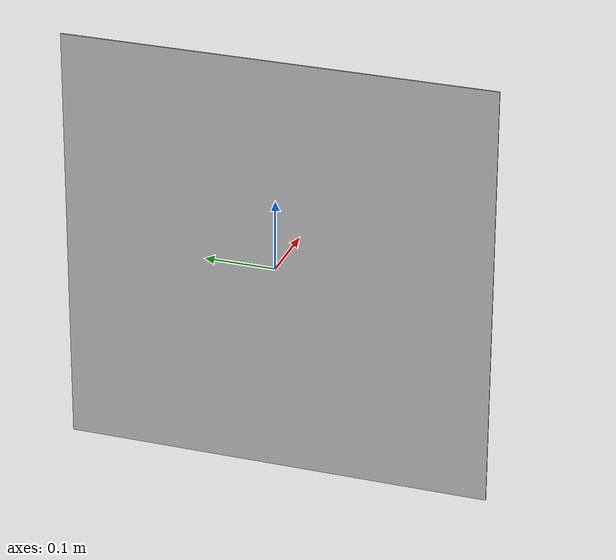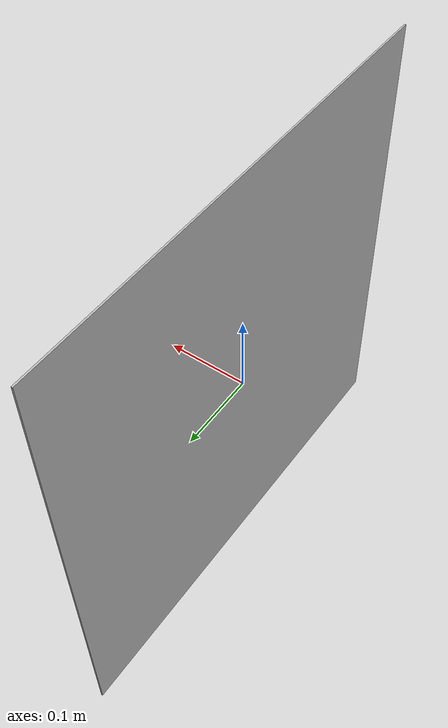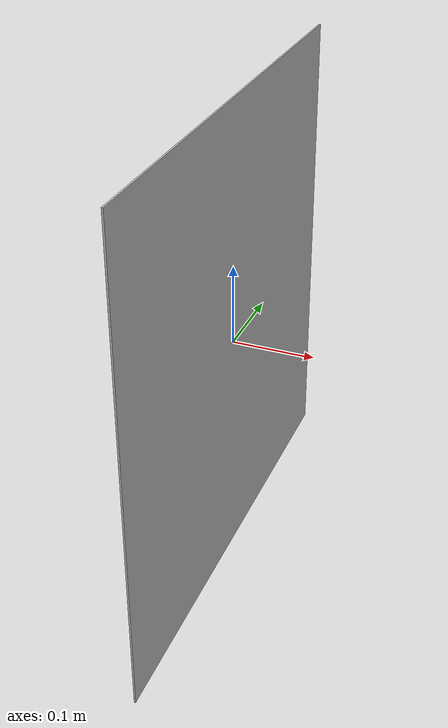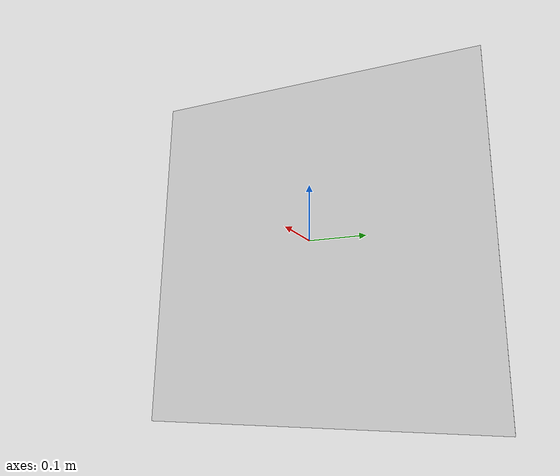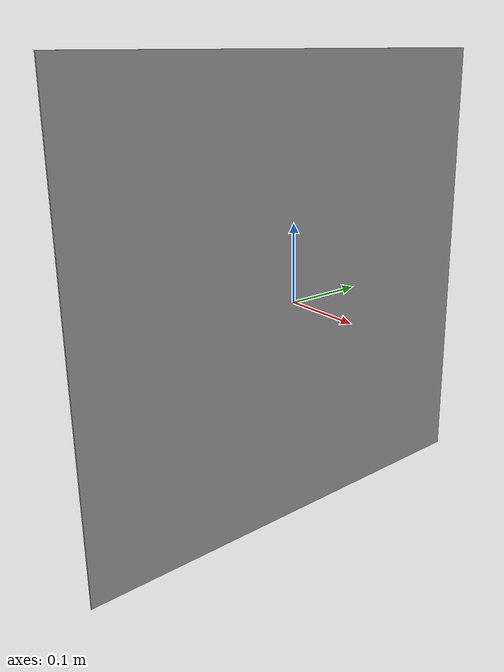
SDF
<?xml version='1.0'?>
<sdf version='1.4'>

  <model name="mark_ar_track4">
    <link name='link'>
      <pose>0 0 0 0 0 0</pose>

      <collision name='collision'>
        <geometry>
                <box>
                  <size>0.0005 0.6 0.6</size>
                </box>
        </geometry>
               <surface>
                   <friction>
                     <ode>
                       <mu>500.0</mu>
                       <mu2>500.0</mu2>
                     </ode>
                   </friction>
           </surface>
      </collision>

       <inertial>
          <mass>0.05</mass>
          <inertia>
            <ixx>0.0001</ixx>
            <ixy>0</ixy>
            <ixz>0</ixz>
            <iyy>0.0001</iyy>
            <iyz>0</iyz>
            <izz>0.0001</izz>
          </inertia>
        </inertial>

      <visual name='visual'>
        <geometry>
                <box>
                  <size>0.002 0.6 0.6</size>
                </box>
        </geometry>

        <material>
          <script>
            <uri>model://mark_ar_track4/materials/scripts</uri>
            <uri>model://mark_ar_track4/materials/textures</uri>
            <name>Mark_ar_track4/Diffuse</name>
          </script>
        </material>
      </visual>
    </link>
  </model>
</sdf>
